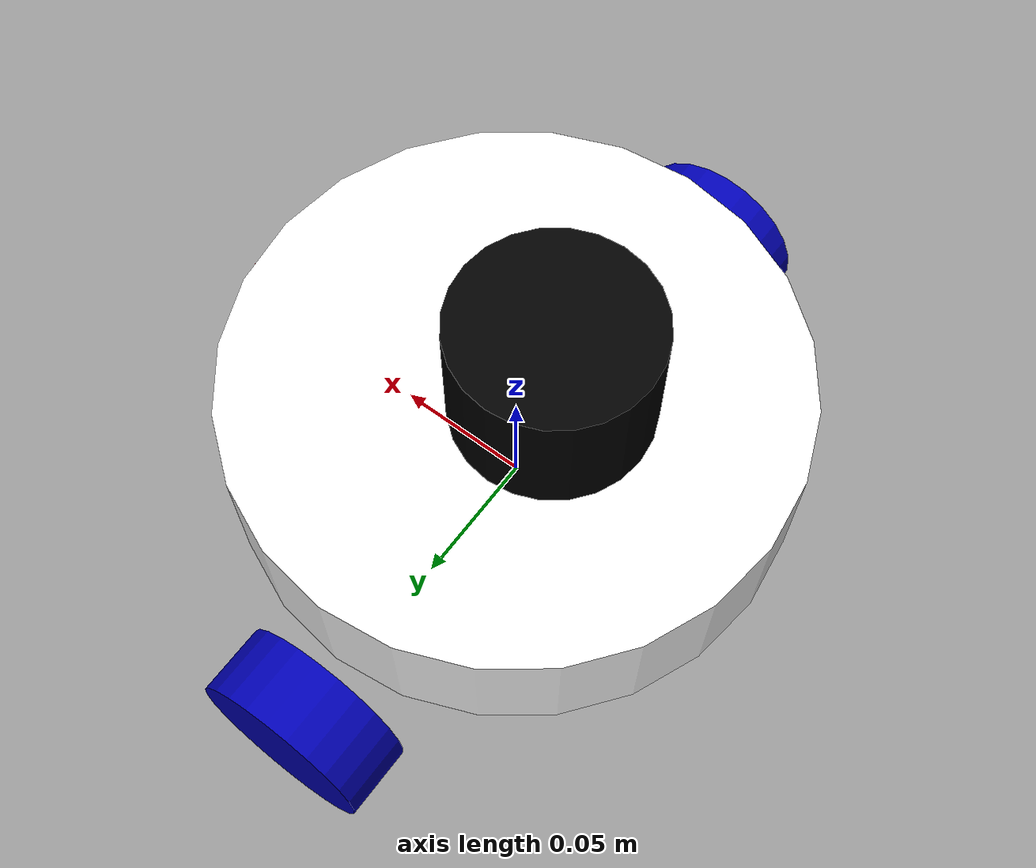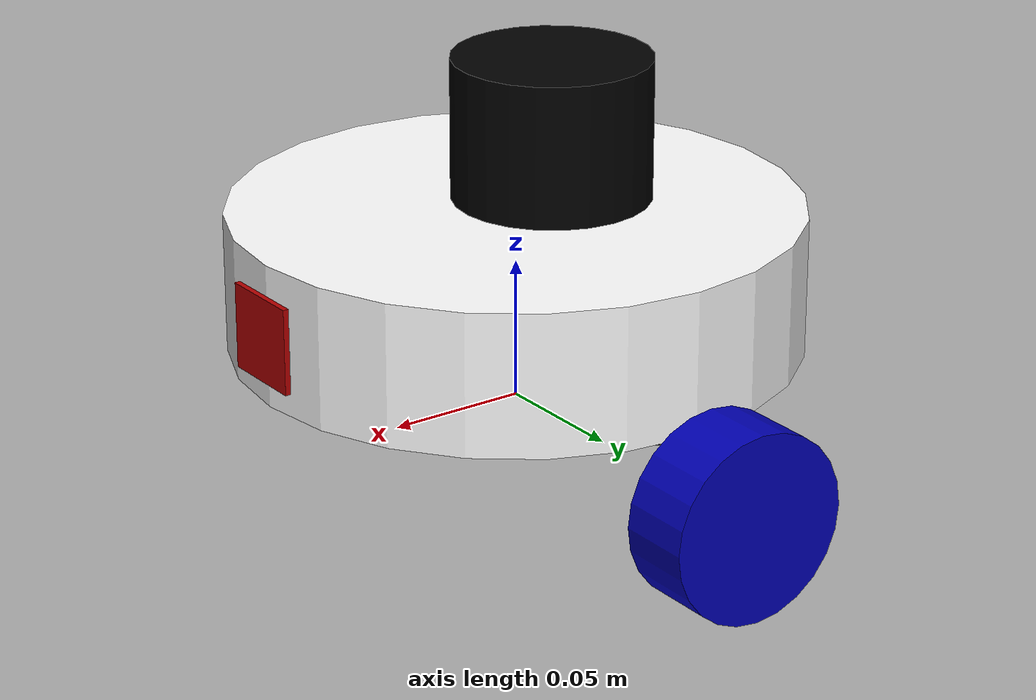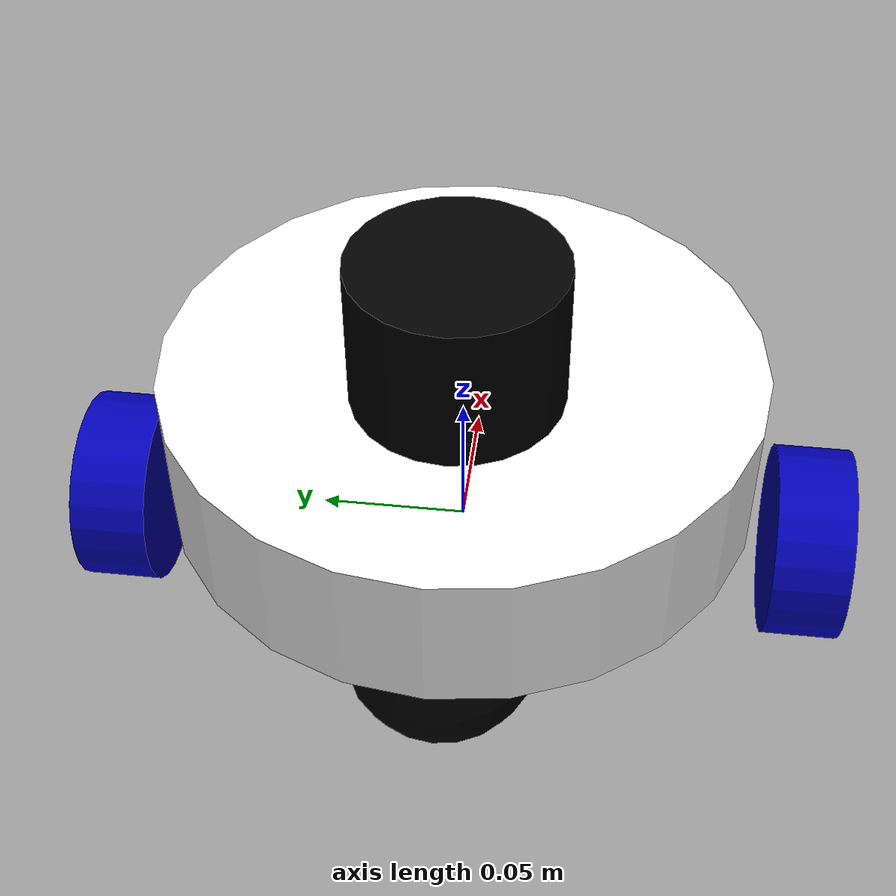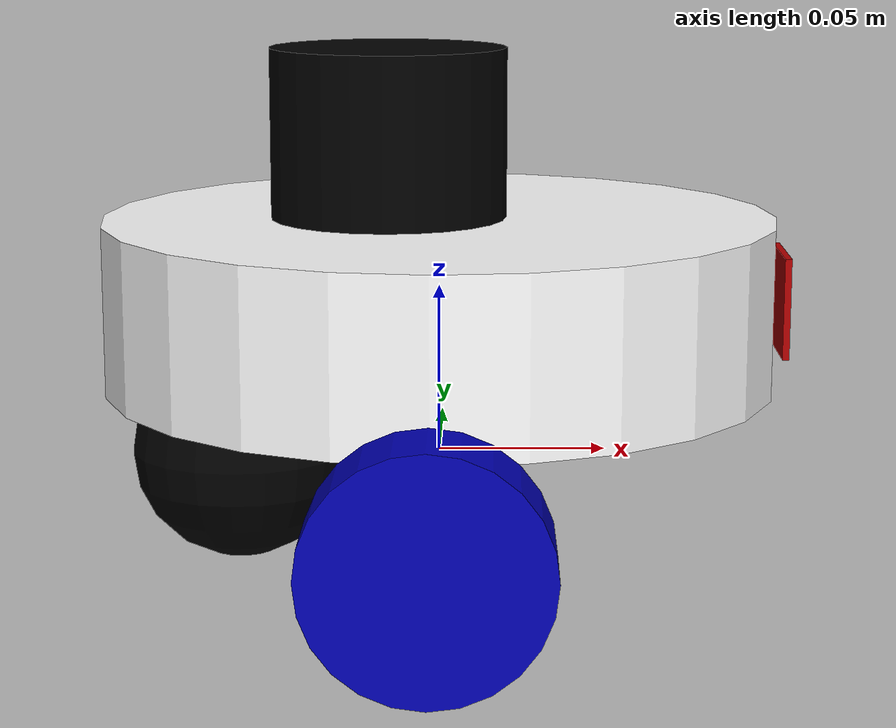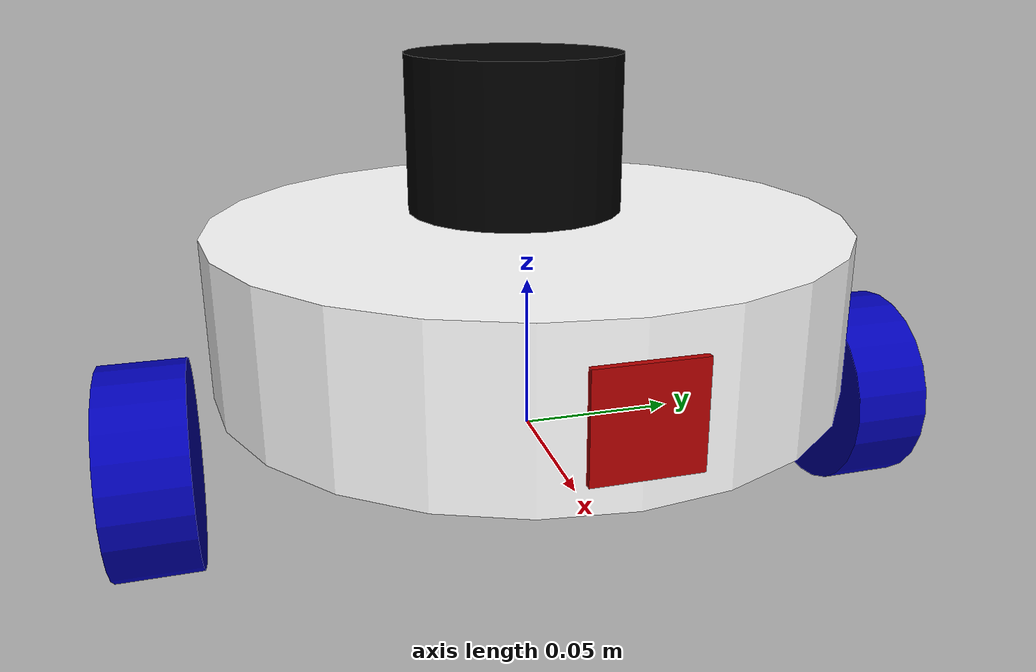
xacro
<?xml version="1.0"?>
<robot xmlns:xacro="http://www.ros.org/wiki/xacro" name="robot">

    <xacro:arg name="use_ros2_control" default="true"/>
    <xacro:arg name="sim_mode" default="false"/>

    <xacro:include filename="parameters.xacro"/>
    <xacro:include filename="inertial_macros.xacro"/>
    <xacro:include filename="robot_core.xacro"/>

    <!-- Select between ros2_control or gazebo_control -->
    <xacro:if value="$(arg use_ros2_control)">
        <xacro:include filename="ros2_control.xacro"/>
    </xacro:if>
    <xacro:unless value="$(arg use_ros2_control)">
        <xacro:include filename="gazebo_control.xacro"/>
    </xacro:unless>

    <xacro:include filename="lidar.xacro"/>
    <xacro:include filename="camera.xacro"/>

</robot>

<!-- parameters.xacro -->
<robot xmlns:xacro="http://www.ros.org/wiki/xacro">

    <xacro:property name="chassis_diameter" value="0.200"/>
    <xacro:property name="chassis_height" value="0.050"/>
    <xacro:property name="chassis_mass" value="1.0"/>

    <xacro:property name="wheel_radius" value="0.033"/>
    <xacro:property name="wheel_thickness" value="0.026"/>
    <xacro:property name="wheel_mass" value="0.05"/>
    <xacro:property name="wheel_offset_x" value="0.100"/>
    <xacro:property name="wheel_offset_y" value="0.120"/>
    <xacro:property name="wheel_offset_z" value="0.021"/>

    <xacro:property name="caster_wheel_radius" value="0.033"/>
    <xacro:property name="caster_wheel_mass" value="0.5"/>
    <xacro:property name="caster_wheel_offset_x" value="0.040"/>
    <xacro:property name="caster_wheel_offset_z" value="${wheel_offset_z}"/>

</robot>

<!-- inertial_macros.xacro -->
<robot xmlns:xacro="http://www.ros.org/wiki/xacro">

    <!-- Specify some standard inertial calculations https://en.wikipedia.org/wiki/List_of_moments_of_inertia -->

    <xacro:macro name="inertial_box" params="mass x y z *origin">
        <inertial>
            <xacro:insert_block name="origin"/>
            <mass value="${mass}" />
            <inertia ixx="${(1/12) * mass * (y*y+z*z)}" ixy="0.0" ixz="0.0"
                    iyy="${(1/12) * mass * (x*x+z*z)}" iyz="0.0"
                    izz="${(1/12) * mass * (x*x+y*y)}"
            />
        </inertial>
    </xacro:macro>

    <xacro:macro name="inertial_cylinder" params="mass length radius *origin">
        <inertial>
            <xacro:insert_block name="origin"/>
            <mass value="${mass}" />
            <inertia ixx="${(1/12) * mass * (3*radius*radius + length*length)}" ixy="0.0" ixz="0.0"
                    iyy="${(1/12) * mass * (3*radius*radius + length*length)}" iyz="0.0"
                    izz="${(1/2) * mass * (radius*radius)}"
            />
        </inertial>
    </xacro:macro>

    <xacro:macro name="inertial_sphere" params="mass radius *origin">
        <inertial>
            <xacro:insert_block name="origin"/>
            <mass value="${mass}"/>
            <inertia ixx="${(2/5) * mass * (radius*radius)}" ixy="0.0" ixz="0.0"
                    iyy="${(2/5) * mass * (radius*radius)}" iyz="0.0"
                    izz="${(2/5) * mass * (radius*radius)}"
            />
        </inertial>
    </xacro:macro>

</robot>

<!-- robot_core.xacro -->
<robot xmlns:xacro="http://www.ros.org/wiki/xacro">
    <xacro:include filename="colors.xacro" />

    <!-- BASE LINK -->
    <link name="base_link">
    </link>

    <!-- BASE FOOTPRINT LINK -->
    <joint name="base_footprint_joint" type="fixed">
        <parent link="base_link"/>
        <child link="base_footprint"/>
        <origin xyz="0.0 0.0 0.0" rpy="0.0 0.0 0.0"/>
    </joint>

    <link name="base_footprint">
    </link>

    <!-- CHASSIS -->
    <joint name="chassis_joint" type="fixed">
        <parent link="base_link"/>
        <child link="chassis"/>
        <origin xyz="${-wheel_offset_x} 0.0 ${wheel_offset_z}"/>
    </joint>

    <link name="chassis">
        <visual>
            <!-- origin offset (review robot dimensions) -->
            <origin xyz="${chassis_diameter/2} 0.0 ${chassis_height/2}"/>
            <geometry>
                <cylinder radius="${chassis_diameter/2}" length="${chassis_height}"/>
            </geometry>
            <material name="white"/>
        </visual>
        <collision>
            <origin xyz="${chassis_diameter/2} 0.0 ${chassis_height/2}"/>
            <geometry>
                <cylinder radius="${chassis_diameter/2}" length="${chassis_height}"/>
            </geometry>
        </collision>
        <xacro:inertial_cylinder mass="${chassis_mass}" length="${chassis_height}" radius="${chassis_diameter/2}">
            <origin xyz="${chassis_diameter/2} 0.0 ${chassis_height/2}" rpy="0.0 0.0 0.0"/>
        </xacro:inertial_cylinder>
    </link>

    <gazebo reference="chassis">
        <material>Gazebo/White</material>
    </gazebo>

    <!-- LEFT WHEEL -->
    <joint name="left_wheel_joint" type="continuous">
        <origin xyz="0.0 ${wheel_offset_y} 0.0" rpy="-${pi/2} 0.0 0.0"/>
        <parent link="base_link"/>
        <child link="left_wheel"/>
        <axis xyz="0.0 0.0 1.0"/>
    </joint>

    <link name="left_wheel">
        <visual>
            <geometry>
                <cylinder radius="${wheel_radius}" length="${wheel_thickness}"/>
            </geometry>
            <material name="blue"/>
        </visual>
        <collision>
            <geometry>
                <cylinder radius="${wheel_radius}" length="${wheel_thickness}"/>
            </geometry>
        </collision>
        <xacro:inertial_cylinder mass="${wheel_mass}" length="${wheel_thickness}" radius="${wheel_radius}">
            <origin xyz="0.0 0.0 0.0" rpy="0.0 0.0 0.0"/>
        </xacro:inertial_cylinder>
    </link>

    <gazebo reference="left_wheel">
        <material>Gazebo/Blue</material>
    </gazebo>

    <!-- RIGHT WHEEL -->
    <joint name="right_wheel_joint" type="continuous">
        <origin xyz="0.0 ${-wheel_offset_y} 0.0" rpy="${pi/2} 0.0 0.0"/>
        <parent link="base_link"/>
        <child link="right_wheel"/>
        <axis xyz="0.0 0.0 -1.0"/>
    </joint>

    <link name="right_wheel">
        <visual>
            <geometry>
                <cylinder radius="${wheel_radius}" length="${wheel_thickness}"/>
            </geometry>
            <material name="blue"/>
        </visual>
        <collision>
            <geometry>
                <cylinder radius="${wheel_radius}" length="${wheel_thickness}"/>
            </geometry>
        </collision>
        <xacro:inertial_cylinder mass="${wheel_mass}" length="${wheel_thickness}" radius="${wheel_radius}">
            <origin xyz="0.0 0.0 0.0" rpy="0.0 0.0 0.0"/>
        </xacro:inertial_cylinder>
    </link>

    <gazebo reference="right_wheel">
        <material>Gazebo/Blue</material>
    </gazebo>

    <!-- CASTER WHEEL -->
    <joint name="caster_wheel_joint" type="fixed">
        <origin xyz="${caster_wheel_offset_x} 0.0 ${-caster_wheel_offset_z}"/>
        <parent link="chassis"/>
        <child link="caster_wheel"/>
    </joint>

    <link name="caster_wheel">
        <visual>
            <geometry>
                <sphere radius="${caster_wheel_radius}"/>
            </geometry>
            <material name="black"/>
        </visual>
        <collision>
            <geometry>
                <sphere radius="${caster_wheel_radius}"/>
            </geometry>
        </collision>
        <xacro:inertial_sphere mass="${caster_wheel_mass}" radius="${caster_wheel_radius}">
            <origin xyz="0.0 0.0 0.0" rpy="0.0 0.0 0.0"/>
        </xacro:inertial_sphere>
    </link>

    <gazebo reference="caster_wheel">
        <material>Gazebo/Black</material>
        <mu1 value="0.001"/>
        <mu2 value="0.001"/>
    </gazebo>

</robot>

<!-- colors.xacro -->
<robot xmlns:xacro="http://www.ros.org/wiki/xacro">

    <!-- Colors Definition -->
    <material name="black">
        <color rgba="0.0 0.0 0.0 1.0" />
    </material>

    <material name="red">
        <color rgba="0.7 0.0 0.0 1.0"/>
    </material>

    <material name="blue">
        <color rgba="0.0 0.0 0.7 1.0"/>
    </material>

    <material name="green">
        <color rgba="0.0 0.7 0.0 1.0"/>
    </material>

    <material name="gray">
        <color rgba="0.5 0.5 0.6 1.0"/>
    </material>

    <material name="white">
        <color rgba="1.0 1.0 1.0 1.0" />
    </material>

</robot>

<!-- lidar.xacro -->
<robot xmlns:xacro="http://www.ros.org/wiki/xacro">

    <joint name="lidar_joint" type="fixed">
        <origin xyz="0.085 0.0 0.075" rpy="0.0 0.0 0.0"/>
        <parent link="chassis"/>
        <child link="lidar"/>
    </joint>

    <link name="lidar">
        <visual>
            <geometry>
                <cylinder radius="0.035" length="0.05"/>
            </geometry>
            <material name="black"/>
        </visual>
        <collision>
            <geometry>
                <cylinder radius="0.035" length="0.05"/>
            </geometry>
        </collision>
        <xacro:inertial_cylinder mass="0.1" length="0.05" radius="0.035">
            <origin xyz="0.0 0.0 0.0" rpy="0.0 0.0 0.0"/>
        </xacro:inertial_cylinder>
    </link>

    <gazebo reference="lidar">
        <material>Gazebo/Black</material>
        <sensor name="lidar" type="ray">
            <pose> 0 0 0 0 0 0 </pose>
            <visualize>false</visualize>
            <update_rate>10</update_rate>
            <ray>
                <scan>
                    <horizontal>
                        <samples>360</samples>
                        <resolution>1</resolution>
                        <min_angle>-3.14</min_angle>
                        <max_angle>3.14</max_angle>
                    </horizontal>
                </scan>
                <range>
                    <min>0.3</min>
                    <max>12</max>
                    <resolution>0.01</resolution>
                </range>
            </ray>
            <plugin name="lidar_controller" filename="libgazebo_ros_ray_sensor.so">
                <ros>
                    <argument>~/out:=scan</argument>
                </ros>
                <output_type>sensor_msgs/LaserScan</output_type>
                <frame_name>lidar</frame_name>
            </plugin>
        </sensor>
    </gazebo>

</robot>

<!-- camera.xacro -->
<robot xmlns:xacro="http://www.ros.org/wiki/xacro">

    <joint name="camera_joint" type="fixed">
        <origin xyz="0.202 0.0 ${chassis_height/2}" rpy="0.0 0.0 0.0"/>
        <parent link="chassis"/>
        <child link="camera"/>
    </joint>

    <link name="camera">
        <visual>
            <geometry>
                <box size="0.002 0.03 0.03"/>
            </geometry>
            <material name="red"/>
        </visual>
    </link>

    <!-- Covert ROS2 camera TF to optical vision standard coordinate system -->
    <joint name="camera_optical_joint" type="fixed">
        <origin xyz="0.0 0.0 0.0" rpy="${-pi/2} 0.0 ${-pi/2}"/>
        <parent link="camera"/>
        <child link="camera_optical"/>
    </joint>

    <link name="camera_optical"></link>

    <gazebo reference="camera">
        <material>Gazebo/Red</material>
        <sensor name="camera" type="camera">
            <pose> 0 0 0 0 0 0 </pose>
            <visualize>true</visualize>
            <update_rate>10</update_rate>
            <camera>
                <horizontal_fov>1.089</horizontal_fov>
                <image>
                    <format>R8G8B8</format>
                    <width>640</width>
                    <height>480</height>
                </image>
                <clip>
                    <near>0.05</near>
                    <far>8.0</far>
                </clip>
            </camera>
            <plugin name="camera_controller" filename="libgazebo_ros_camera.so">
                <frame_name>camera_optical</frame_name>
            </plugin>
        </sensor>
    </gazebo>

</robot>
